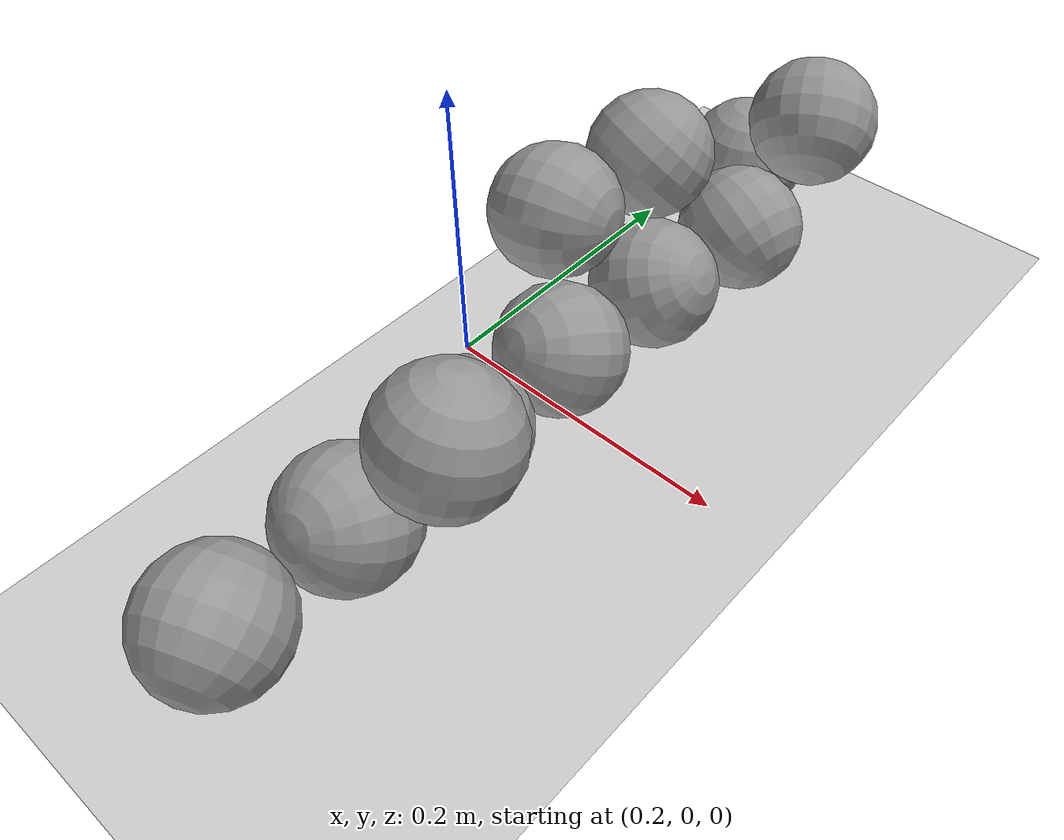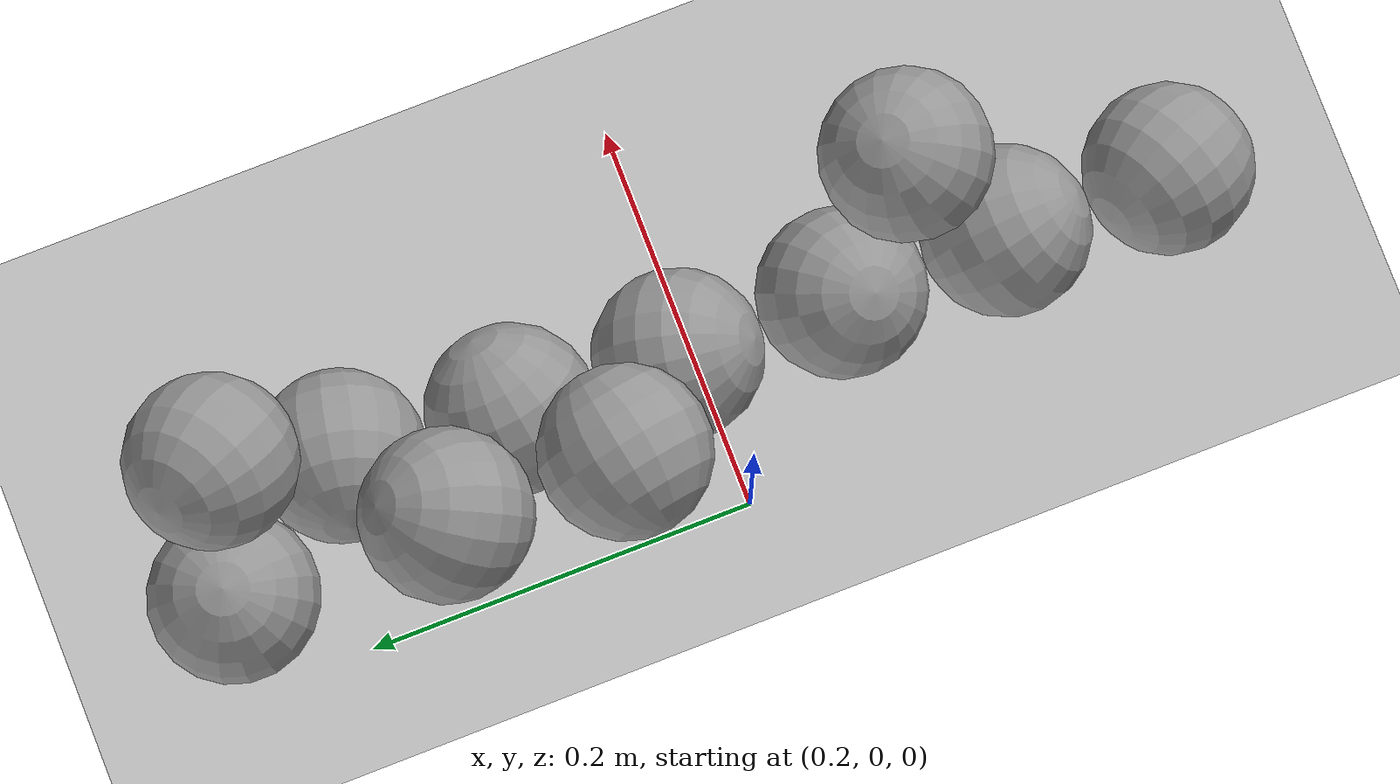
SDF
<sdf version="1.6">
 <world name="default">
  <model name="ground_plane">
   <static>1</static>
   <link name="link">
    <collision name="collision">
     <geometry><plane><normal>0 0 1</normal><size>100 100</size></plane></geometry>
     <surface>
      <contact><collide_bitmask>65535</collide_bitmask></contact>
      <friction><ode><mu>100</mu><mu2>50</mu2></ode></friction>
     </surface>
    </collision>
    <visual name="visual">
     <cast_shadows>0</cast_shadows>
     <geometry><plane><normal>0 0 1</normal><size>100 100</size></plane></geometry>
     <material>
      <script><uri>file://media/materials/scripts/gazebo.material</uri><name>Gazebo/Grey</name></script>
     </material>
    </visual>
   </link>
  </model>
  <model name="unit_sphere_clone_4_clone_1_clone_0_clone_0">
   <link name="link">
    <inertial>
     <mass>0.000642099</mass>
     <inertia>
      <ixx>4.77879e-07</ixx>
      <ixy>0</ixy>
      <ixz>0</ixz>
      <iyy>4.77879e-07</iyy>
      <iyz>0</iyz>
      <izz>4.77879e-07</izz>
     </inertia>
    </inertial>
    <visual name="visual">
     <geometry><sphere><radius>0.0431354</radius></sphere></geometry>
     <material>
      <script><name>Gazebo/Grey</name><uri>file://media/materials/scripts/gazebo.material</uri></script>
      <shader type="pixel"/>
      <ambient>0.3 0.3 0.3 1</ambient>
      <diffuse>0.7 0.7 0.7 1</diffuse>
      <specular>0.01 0.01 0.01 1</specular>
      <emissive>0 0 0 1</emissive>
     </material>
    </visual>
    <collision name="collision">
     <geometry><sphere><radius>0.043135</radius></sphere></geometry>
     <surface>
      <friction>
       <ode><mu>1</mu><mu2>1</mu2><fdir1>0 0 0</fdir1><slip1>0</slip1><slip2>0</slip2></ode>
       <torsional>
        <coefficient>1</coefficient>
        <patch_radius>0</patch_radius>
        <surface_radius>0</surface_radius>
        <use_patch_radius>1</use_patch_radius>
        <ode><slip>0</slip></ode>
       </torsional>
      </friction>
      <bounce><restitution_coefficient>0</restitution_coefficient><threshold>1e+06</threshold></bounce>
      <contact>
       <collide_without_contact>0</collide_without_contact>
       <collide_without_contact_bitmask>1</collide_without_contact_bitmask>
       <collide_bitmask>1</collide_bitmask>
       <ode>
        <soft_cfm>0</soft_cfm>
        <soft_erp>0.2</soft_erp>
        <kp>1e+13</kp>
        <kd>1</kd>
        <max_vel>0.01</max_vel>
        <min_depth>0</min_depth>
       </ode>
       <bullet>
        <split_impulse>1</split_impulse>
        <split_impulse_penetration_threshold>-0.01</split_impulse_penetration_threshold>
        <soft_cfm>0</soft_cfm>
        <soft_erp>0.2</soft_erp>
        <kp>1e+13</kp>
        <kd>1</kd>
       </bullet>
      </contact>
     </surface>
    </collision>
   </link>
   <static>0</static>
   <pose>0.277178 0.008545 0.043135 2.24902 0.729689 -2.89688</pose>
  </model>
  <model name="unit_sphere_clone_2_clone_2_clone_3_clone_clone_clone_0_clone_clone_clone_5">
   <link name="link">
    <inertial>
     <mass>0.000642099</mass>
     <inertia>
      <ixx>4.77879e-07</ixx>
      <ixy>0</ixy>
      <ixz>0</ixz>
      <iyy>4.77879e-07</iyy>
      <iyz>0</iyz>
      <izz>4.77879e-07</izz>
     </inertia>
    </inertial>
    <visual name="visual">
     <geometry><sphere><radius>0.0431354</radius></sphere></geometry>
     <material>
      <script><name>Gazebo/Grey</name><uri>file://media/materials/scripts/gazebo.material</uri></script>
      <shader type="pixel"/>
      <ambient>0.3 0.3 0.3 1</ambient>
      <diffuse>0.7 0.7 0.7 1</diffuse>
      <specular>0.01 0.01 0.01 1</specular>
      <emissive>0 0 0 1</emissive>
     </material>
    </visual>
    <collision name="collision">
     <geometry><sphere><radius>0.043135</radius></sphere></geometry>
     <surface>
      <friction>
       <ode><mu>1</mu><mu2>1</mu2><fdir1>0 0 0</fdir1><slip1>0</slip1><slip2>0</slip2></ode>
       <torsional>
        <coefficient>1</coefficient>
        <patch_radius>0</patch_radius>
        <surface_radius>0</surface_radius>
        <use_patch_radius>1</use_patch_radius>
        <ode><slip>0</slip></ode>
       </torsional>
      </friction>
      <bounce><restitution_coefficient>0</restitution_coefficient><threshold>1e+06</threshold></bounce>
      <contact>
       <collide_without_contact>0</collide_without_contact>
       <collide_without_contact_bitmask>1</collide_without_contact_bitmask>
       <collide_bitmask>1</collide_bitmask>
       <ode>
        <soft_cfm>0</soft_cfm>
        <soft_erp>0.2</soft_erp>
        <kp>1e+13</kp>
        <kd>1</kd>
        <max_vel>0.01</max_vel>
        <min_depth>0</min_depth>
       </ode>
       <bullet>
        <split_impulse>1</split_impulse>
        <split_impulse_penetration_threshold>-0.01</split_impulse_penetration_threshold>
        <soft_cfm>0</soft_cfm>
        <soft_erp>0.2</soft_erp>
        <kp>1e+13</kp>
        <kd>1</kd>
       </bullet>
      </contact>
     </surface>
    </collision>
   </link>
   <static>0</static>
   <pose>0.276431 -0.163993 0.043137 -2.18756 -0.564432 0.415618</pose>
  </model>
  <model name="unit_sphere_clone_2_clone_2_clone_3_clone_clone_clone_0_clone_clone_clone_6">
   <link name="link">
    <inertial>
     <mass>0.000642099</mass>
     <inertia>
      <ixx>4.77879e-07</ixx>
      <ixy>0</ixy>
      <ixz>0</ixz>
      <iyy>4.77879e-07</iyy>
      <iyz>0</iyz>
      <izz>4.77879e-07</izz>
     </inertia>
    </inertial>
    <visual name="visual">
     <geometry><sphere><radius>0.0431354</radius></sphere></geometry>
     <material>
      <script><name>Gazebo/Grey</name><uri>file://media/materials/scripts/gazebo.material</uri></script>
      <shader type="pixel"/>
      <ambient>0.3 0.3 0.3 1</ambient>
      <diffuse>0.7 0.7 0.7 1</diffuse>
      <specular>0.01 0.01 0.01 1</specular>
      <emissive>0 0 0 1</emissive>
     </material>
    </visual>
    <collision name="collision">
     <geometry><sphere><radius>0.043135</radius></sphere></geometry>
     <surface>
      <friction>
       <ode><mu>1</mu><mu2>1</mu2><fdir1>0 0 0</fdir1><slip1>0</slip1><slip2>0</slip2></ode>
       <torsional>
        <coefficient>1</coefficient>
        <patch_radius>0</patch_radius>
        <surface_radius>0</surface_radius>
        <use_patch_radius>1</use_patch_radius>
        <ode><slip>0</slip></ode>
       </torsional>
      </friction>
      <bounce><restitution_coefficient>0</restitution_coefficient><threshold>1e+06</threshold></bounce>
      <contact>
       <collide_without_contact>0</collide_without_contact>
       <collide_without_contact_bitmask>1</collide_without_contact_bitmask>
       <collide_bitmask>1</collide_bitmask>
       <ode>
        <soft_cfm>0</soft_cfm>
        <soft_erp>0.2</soft_erp>
        <kp>1e+13</kp>
        <kd>1</kd>
        <max_vel>0.01</max_vel>
        <min_depth>0</min_depth>
       </ode>
       <bullet>
        <split_impulse>1</split_impulse>
        <split_impulse_penetration_threshold>-0.01</split_impulse_penetration_threshold>
        <soft_cfm>0</soft_cfm>
        <soft_erp>0.2</soft_erp>
        <kp>1e+13</kp>
        <kd>1</kd>
       </bullet>
      </contact>
     </surface>
    </collision>
   </link>
   <static>0</static>
   <pose>0.276066 -0.250266 0.043133 1.19181 -0.774067 -2.47513</pose>
  </model>
  <model name="unit_sphere_clone_2_clone_2_clone_3_clone_clone_clone_0_clone_clone_clone_0_clone_1_clone_0_clone_1_clone_1">
   <link name="link">
    <inertial>
     <mass>0.000642099</mass>
     <inertia>
      <ixx>4.77879e-07</ixx>
      <ixy>0</ixy>
      <ixz>0</ixz>
      <iyy>4.77879e-07</iyy>
      <iyz>0</iyz>
      <izz>4.77879e-07</izz>
     </inertia>
    </inertial>
    <visual name="visual">
     <geometry><sphere><radius>0.0431354</radius></sphere></geometry>
     <material>
      <script><name>Gazebo/Grey</name><uri>file://media/materials/scripts/gazebo.material</uri></script>
      <shader type="pixel"/>
      <ambient>0.3 0.3 0.3 1</ambient>
      <diffuse>0.7 0.7 0.7 1</diffuse>
      <specular>0.01 0.01 0.01 1</specular>
      <emissive>0 0 0 1</emissive>
     </material>
    </visual>
    <collision name="collision">
     <geometry><sphere><radius>0.043135</radius></sphere></geometry>
     <surface>
      <friction>
       <ode><mu>1</mu><mu2>1</mu2><fdir1>0 0 0</fdir1><slip1>0</slip1><slip2>0</slip2></ode>
       <torsional>
        <coefficient>1</coefficient>
        <patch_radius>0</patch_radius>
        <surface_radius>0</surface_radius>
        <use_patch_radius>1</use_patch_radius>
        <ode><slip>0</slip></ode>
       </torsional>
      </friction>
      <bounce><restitution_coefficient>0</restitution_coefficient><threshold>1e+06</threshold></bounce>
      <contact>
       <collide_without_contact>0</collide_without_contact>
       <collide_without_contact_bitmask>1</collide_without_contact_bitmask>
       <collide_bitmask>1</collide_bitmask>
       <ode>
        <soft_cfm>0</soft_cfm>
        <soft_erp>0.2</soft_erp>
        <kp>1e+13</kp>
        <kd>1</kd>
        <max_vel>0.01</max_vel>
        <min_depth>0</min_depth>
       </ode>
       <bullet>
        <split_impulse>1</split_impulse>
        <split_impulse_penetration_threshold>-0.01</split_impulse_penetration_threshold>
        <soft_cfm>0</soft_cfm>
        <soft_erp>0.2</soft_erp>
        <kp>1e+13</kp>
        <kd>1</kd>
       </bullet>
      </contact>
     </surface>
    </collision>
   </link>
   <static>0</static>
   <pose>0.2768 -0.077724 0.043136 0.19922 -0.357076 0.268702</pose>
  </model>
  <model name="unit_sphere_clone_4_clone_1_clone_3_clone_clone">
   <link name="link">
    <inertial>
     <mass>0.000642099</mass>
     <inertia>
      <ixx>4.77879e-07</ixx>
      <ixy>0</ixy>
      <ixz>0</ixz>
      <iyy>4.77879e-07</iyy>
      <iyz>0</iyz>
      <izz>4.77879e-07</izz>
     </inertia>
    </inertial>
    <visual name="visual">
     <geometry><sphere><radius>0.0431354</radius></sphere></geometry>
     <material>
      <script><name>Gazebo/Grey</name><uri>file://media/materials/scripts/gazebo.material</uri></script>
      <shader type="pixel"/>
      <ambient>0.3 0.3 0.3 1</ambient>
      <diffuse>0.7 0.7 0.7 1</diffuse>
      <specular>0.01 0.01 0.01 1</specular>
      <emissive>0 0 0 1</emissive>
     </material>
    </visual>
    <collision name="collision">
     <geometry><sphere><radius>0.043135</radius></sphere></geometry>
     <surface>
      <friction>
       <ode><mu>1</mu><mu2>1</mu2><fdir1>0 0 0</fdir1><slip1>0</slip1><slip2>0</slip2></ode>
       <torsional>
        <coefficient>1</coefficient>
        <patch_radius>0</patch_radius>
        <surface_radius>0</surface_radius>
        <use_patch_radius>1</use_patch_radius>
        <ode><slip>0</slip></ode>
       </torsional>
      </friction>
      <bounce><restitution_coefficient>0</restitution_coefficient><threshold>1e+06</threshold></bounce>
      <contact>
       <collide_without_contact>0</collide_without_contact>
       <collide_without_contact_bitmask>1</collide_without_contact_bitmask>
       <collide_bitmask>1</collide_bitmask>
       <ode>
        <soft_cfm>0</soft_cfm>
        <soft_erp>0.2</soft_erp>
        <kp>1e+13</kp>
        <kd>1</kd>
        <max_vel>0.01</max_vel>
        <min_depth>0</min_depth>
       </ode>
       <bullet>
        <split_impulse>1</split_impulse>
        <split_impulse_penetration_threshold>-0.01</split_impulse_penetration_threshold>
        <soft_cfm>0</soft_cfm>
        <soft_erp>0.2</soft_erp>
        <kp>1e+13</kp>
        <kd>1</kd>
       </bullet>
      </contact>
     </surface>
    </collision>
   </link>
   <static>0</static>
   <pose>0.319542 -0.125934 0.107446 0.150017 0.268294 1.78553</pose>
  </model>
  <model name="unit_sphere_clone_4_clone_1_clone_1_clone_4">
   <link name="link">
    <inertial>
     <mass>0.000642099</mass>
     <inertia>
      <ixx>4.77879e-07</ixx>
      <ixy>0</ixy>
      <ixz>0</ixz>
      <iyy>4.77879e-07</iyy>
      <iyz>0</iyz>
      <izz>4.77879e-07</izz>
     </inertia>
    </inertial>
    <visual name="visual">
     <geometry><sphere><radius>0.0431354</radius></sphere></geometry>
     <material>
      <script><name>Gazebo/Grey</name><uri>file://media/materials/scripts/gazebo.material</uri></script>
      <shader type="pixel"/>
      <ambient>0.3 0.3 0.3 1</ambient>
      <diffuse>0.7 0.7 0.7 1</diffuse>
      <specular>0.01 0.01 0.01 1</specular>
      <emissive>0 0 0 1</emissive>
     </material>
    </visual>
    <collision name="collision">
     <geometry><sphere><radius>0.043135</radius></sphere></geometry>
     <surface>
      <friction>
       <ode><mu>1</mu><mu2>1</mu2><fdir1>0 0 0</fdir1><slip1>0</slip1><slip2>0</slip2></ode>
       <torsional>
        <coefficient>1</coefficient>
        <patch_radius>0</patch_radius>
        <surface_radius>0</surface_radius>
        <use_patch_radius>1</use_patch_radius>
        <ode><slip>0</slip></ode>
       </torsional>
      </friction>
      <bounce><restitution_coefficient>0</restitution_coefficient><threshold>1e+06</threshold></bounce>
      <contact>
       <collide_without_contact>0</collide_without_contact>
       <collide_without_contact_bitmask>1</collide_without_contact_bitmask>
       <collide_bitmask>1</collide_bitmask>
       <ode>
        <soft_cfm>0</soft_cfm>
        <soft_erp>0.2</soft_erp>
        <kp>1e+13</kp>
        <kd>1</kd>
        <max_vel>0.01</max_vel>
        <min_depth>0</min_depth>
       </ode>
       <bullet>
        <split_impulse>1</split_impulse>
        <split_impulse_penetration_threshold>-0.01</split_impulse_penetration_threshold>
        <soft_cfm>0</soft_cfm>
        <soft_erp>0.2</soft_erp>
        <kp>1e+13</kp>
        <kd>1</kd>
       </bullet>
      </contact>
     </surface>
    </collision>
   </link>
   <static>0</static>
   <pose>0.281331 0.094715 0.043131 -2.25911 -0.505711 2.1235</pose>
  </model>
  <model name="unit_sphere_clone_4_clone_1_clone_3_clone_1_clone_clone_0_clone_clone_0_clone_clone_0">
   <link name="link">
    <inertial>
     <mass>0.000642099</mass>
     <inertia>
      <ixx>4.77879e-07</ixx>
      <ixy>0</ixy>
      <ixz>0</ixz>
      <iyy>4.77879e-07</iyy>
      <iyz>0</iyz>
      <izz>4.77879e-07</izz>
     </inertia>
    </inertial>
    <visual name="visual">
     <geometry><sphere><radius>0.0431354</radius></sphere></geometry>
     <material>
      <script><name>Gazebo/Grey</name><uri>file://media/materials/scripts/gazebo.material</uri></script>
      <shader type="pixel"/>
      <ambient>0.3 0.3 0.3 1</ambient>
      <diffuse>0.7 0.7 0.7 1</diffuse>
      <specular>0.01 0.01 0.01 1</specular>
      <emissive>0 0 0 1</emissive>
     </material>
    </visual>
    <collision name="collision">
     <geometry><sphere><radius>0.043135</radius></sphere></geometry>
     <surface>
      <friction>
       <ode><mu>1</mu><mu2>1</mu2><fdir1>0 0 0</fdir1><slip1>0</slip1><slip2>0</slip2></ode>
       <torsional>
        <coefficient>1</coefficient>
        <patch_radius>0</patch_radius>
        <surface_radius>0</surface_radius>
        <use_patch_radius>1</use_patch_radius>
        <ode><slip>0</slip></ode>
       </torsional>
      </friction>
      <bounce><restitution_coefficient>0</restitution_coefficient><threshold>1e+06</threshold></bounce>
      <contact>
       <collide_without_contact>0</collide_without_contact>
       <collide_without_contact_bitmask>1</collide_without_contact_bitmask>
       <collide_bitmask>1</collide_bitmask>
       <ode>
        <soft_cfm>0</soft_cfm>
        <soft_erp>0.2</soft_erp>
        <kp>1e+13</kp>
        <kd>1</kd>
        <max_vel>0.01</max_vel>
        <min_depth>0</min_depth>
       </ode>
       <bullet>
        <split_impulse>1</split_impulse>
        <split_impulse_penetration_threshold>-0.01</split_impulse_penetration_threshold>
        <soft_cfm>0</soft_cfm>
        <soft_erp>0.2</soft_erp>
        <kp>1e+13</kp>
        <kd>1</kd>
       </bullet>
      </contact>
     </surface>
    </collision>
   </link>
   <static>0</static>
   <pose>0.244349 0.253606 0.043135 3.10191 0.018738 0.467068</pose>
  </model>
  <model name="unit_sphere_clone_4_clone_1_clone_3_clone_1_clone_clone_0_clone_clone_0_clone_clone_1_clone">
   <link name="link">
    <inertial>
     <mass>0.000642099</mass>
     <inertia>
      <ixx>4.77879e-07</ixx>
      <ixy>0</ixy>
      <ixz>0</ixz>
      <iyy>4.77879e-07</iyy>
      <iyz>0</iyz>
      <izz>4.77879e-07</izz>
     </inertia>
    </inertial>
    <visual name="visual">
     <geometry><sphere><radius>0.0431354</radius></sphere></geometry>
     <material>
      <script><name>Gazebo/Grey</name><uri>file://media/materials/scripts/gazebo.material</uri></script>
      <shader type="pixel"/>
      <ambient>0.3 0.3 0.3 1</ambient>
      <diffuse>0.7 0.7 0.7 1</diffuse>
      <specular>0.01 0.01 0.01 1</specular>
      <emissive>0 0 0 1</emissive>
     </material>
    </visual>
    <collision name="collision">
     <geometry><sphere><radius>0.043135</radius></sphere></geometry>
     <surface>
      <friction>
       <ode><mu>1</mu><mu2>1</mu2><fdir1>0 0 0</fdir1><slip1>0</slip1><slip2>0</slip2></ode>
       <torsional>
        <coefficient>1</coefficient>
        <patch_radius>0</patch_radius>
        <surface_radius>0</surface_radius>
        <use_patch_radius>1</use_patch_radius>
        <ode><slip>0</slip></ode>
       </torsional>
      </friction>
      <bounce><restitution_coefficient>0</restitution_coefficient><threshold>1e+06</threshold></bounce>
      <contact>
       <collide_without_contact>0</collide_without_contact>
       <collide_without_contact_bitmask>1</collide_without_contact_bitmask>
       <collide_bitmask>1</collide_bitmask>
       <ode>
        <soft_cfm>0</soft_cfm>
        <soft_erp>0.2</soft_erp>
        <kp>1e+13</kp>
        <kd>1</kd>
        <max_vel>0.01</max_vel>
        <min_depth>0</min_depth>
       </ode>
       <bullet>
        <split_impulse>1</split_impulse>
        <split_impulse_penetration_threshold>-0.01</split_impulse_penetration_threshold>
        <soft_cfm>0</soft_cfm>
        <soft_erp>0.2</soft_erp>
        <kp>1e+13</kp>
        <kd>1</kd>
       </bullet>
      </contact>
     </surface>
    </collision>
   </link>
   <static>0</static>
   <pose>0.290193 0.180522 0.043135 -0.456215 1.05548 2.43208</pose>
  </model>
  <model name="unit_sphere_clone_4_clone_1_clone_3_clone_1_clone_clone_0_clone_clone_0_clone_clone_clone_0_clone">
   <link name="link">
    <inertial>
     <mass>0.000642099</mass>
     <inertia>
      <ixx>4.77879e-07</ixx>
      <ixy>0</ixy>
      <ixz>0</ixz>
      <iyy>4.77879e-07</iyy>
      <iyz>0</iyz>
      <izz>4.77879e-07</izz>
     </inertia>
    </inertial>
    <visual name="visual">
     <geometry><sphere><radius>0.0431354</radius></sphere></geometry>
     <material>
      <script><name>Gazebo/Grey</name><uri>file://media/materials/scripts/gazebo.material</uri></script>
      <shader type="pixel"/>
      <ambient>0.3 0.3 0.3 1</ambient>
      <diffuse>0.7 0.7 0.7 1</diffuse>
      <specular>0.01 0.01 0.01 1</specular>
      <emissive>0 0 0 1</emissive>
     </material>
    </visual>
    <collision name="collision">
     <geometry><sphere><radius>0.043135</radius></sphere></geometry>
     <surface>
      <friction>
       <ode><mu>1</mu><mu2>1</mu2><fdir1>0 0 0</fdir1><slip1>0</slip1><slip2>0</slip2></ode>
       <torsional>
        <coefficient>1</coefficient>
        <patch_radius>0</patch_radius>
        <surface_radius>0</surface_radius>
        <use_patch_radius>1</use_patch_radius>
        <ode><slip>0</slip></ode>
       </torsional>
      </friction>
      <bounce><restitution_coefficient>0</restitution_coefficient><threshold>1e+06</threshold></bounce>
      <contact>
       <collide_without_contact>0</collide_without_contact>
       <collide_without_contact_bitmask>1</collide_without_contact_bitmask>
       <collide_bitmask>1</collide_bitmask>
       <ode>
        <soft_cfm>0</soft_cfm>
        <soft_erp>0.2</soft_erp>
        <kp>1e+13</kp>
        <kd>1</kd>
        <max_vel>0.01</max_vel>
        <min_depth>0</min_depth>
       </ode>
       <bullet>
        <split_impulse>1</split_impulse>
        <split_impulse_penetration_threshold>-0.01</split_impulse_penetration_threshold>
        <soft_cfm>0</soft_cfm>
        <soft_erp>0.2</soft_erp>
        <kp>1e+13</kp>
        <kd>1</kd>
       </bullet>
      </contact>
     </surface>
    </collision>
   </link>
   <static>0</static>
   <pose>0.23422 0.051975 0.104042 -1.63362 -1.178 1.81246</pose>
  </model>
  <model name="unit_sphere_clone_4_clone_1_clone_3_clone_1_clone_clone_0_clone_clone_0_clone_clone_clone_5">
   <link name="link">
    <inertial>
     <mass>0.000642099</mass>
     <inertia>
      <ixx>4.77879e-07</ixx>
      <ixy>0</ixy>
      <ixz>0</ixz>
      <iyy>4.77879e-07</iyy>
      <iyz>0</iyz>
      <izz>4.77879e-07</izz>
     </inertia>
    </inertial>
    <visual name="visual">
     <geometry><sphere><radius>0.0431354</radius></sphere></geometry>
     <material>
      <script><name>Gazebo/Grey</name><uri>file://media/materials/scripts/gazebo.material</uri></script>
      <shader type="pixel"/>
      <ambient>0.3 0.3 0.3 1</ambient>
      <diffuse>0.7 0.7 0.7 1</diffuse>
      <specular>0.01 0.01 0.01 1</specular>
      <emissive>0 0 0 1</emissive>
     </material>
    </visual>
    <collision name="collision">
     <geometry><sphere><radius>0.043135</radius></sphere></geometry>
     <surface>
      <friction>
       <ode><mu>1</mu><mu2>1</mu2><fdir1>0 0 0</fdir1><slip1>0</slip1><slip2>0</slip2></ode>
       <torsional>
        <coefficient>1</coefficient>
        <patch_radius>0</patch_radius>
        <surface_radius>0</surface_radius>
        <use_patch_radius>1</use_patch_radius>
        <ode><slip>0</slip></ode>
       </torsional>
      </friction>
      <bounce><restitution_coefficient>0</restitution_coefficient><threshold>1e+06</threshold></bounce>
      <contact>
       <collide_without_contact>0</collide_without_contact>
       <collide_without_contact_bitmask>1</collide_without_contact_bitmask>
       <collide_bitmask>1</collide_bitmask>
       <ode>
        <soft_cfm>0</soft_cfm>
        <soft_erp>0.2</soft_erp>
        <kp>1e+13</kp>
        <kd>1</kd>
        <max_vel>0.01</max_vel>
        <min_depth>0</min_depth>
       </ode>
       <bullet>
        <split_impulse>1</split_impulse>
        <split_impulse_penetration_threshold>-0.01</split_impulse_penetration_threshold>
        <soft_cfm>0</soft_cfm>
        <soft_erp>0.2</soft_erp>
        <kp>1e+13</kp>
        <kd>1</kd>
       </bullet>
      </contact>
     </surface>
    </collision>
   </link>
   <static>0</static>
   <pose>0.301407 0.238489 0.10605 2.39147 -0.710561 -0.092385</pose>
  </model>
  <model name="unit_sphere_clone_4_clone_1_clone_3_clone_1_clone_clone_0_clone_clone_0_clone_clone_clone_3_clone">
   <link name="link">
    <inertial>
     <mass>0.000642099</mass>
     <inertia>
      <ixx>4.77879e-07</ixx>
      <ixy>0</ixy>
      <ixz>0</ixz>
      <iyy>4.77879e-07</iyy>
      <iyz>0</iyz>
      <izz>4.77879e-07</izz>
     </inertia>
    </inertial>
    <visual name="visual">
     <geometry><sphere><radius>0.0431354</radius></sphere></geometry>
     <material>
      <script><name>Gazebo/Grey</name><uri>file://media/materials/scripts/gazebo.material</uri></script>
      <shader type="pixel"/>
      <ambient>0.3 0.3 0.3 1</ambient>
      <diffuse>0.7 0.7 0.7 1</diffuse>
      <specular>0.01 0.01 0.01 1</specular>
      <emissive>0 0 0 1</emissive>
     </material>
    </visual>
    <collision name="collision">
     <geometry><sphere><radius>0.043135</radius></sphere></geometry>
     <surface>
      <friction>
       <ode><mu>1</mu><mu2>1</mu2><fdir1>0 0 0</fdir1><slip1>0</slip1><slip2>0</slip2></ode>
       <torsional>
        <coefficient>1</coefficient>
        <patch_radius>0</patch_radius>
        <surface_radius>0</surface_radius>
        <use_patch_radius>1</use_patch_radius>
        <ode><slip>0</slip></ode>
       </torsional>
      </friction>
      <bounce><restitution_coefficient>0</restitution_coefficient><threshold>1e+06</threshold></bounce>
      <contact>
       <collide_without_contact>0</collide_without_contact>
       <collide_without_contact_bitmask>1</collide_without_contact_bitmask>
       <collide_bitmask>1</collide_bitmask>
       <ode>
        <soft_cfm>0</soft_cfm>
        <soft_erp>0.2</soft_erp>
        <kp>1e+13</kp>
        <kd>1</kd>
        <max_vel>0.01</max_vel>
        <min_depth>0</min_depth>
       </ode>
       <bullet>
        <split_impulse>1</split_impulse>
        <split_impulse_penetration_threshold>-0.01</split_impulse_penetration_threshold>
        <soft_cfm>0</soft_cfm>
        <soft_erp>0.2</soft_erp>
        <kp>1e+13</kp>
        <kd>1</kd>
       </bullet>
      </contact>
     </surface>
    </collision>
   </link>
   <static>0</static>
   <pose>0.237196 0.142632 0.099687 -2.73461 -0.76839 -2.504</pose>
  </model>
 </world>
</sdf>
